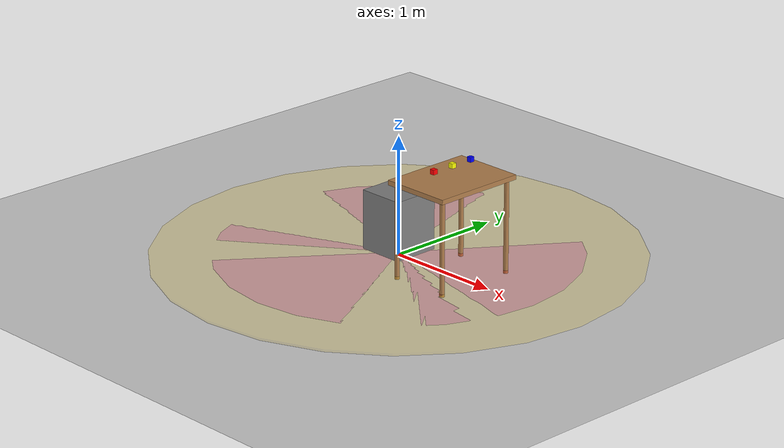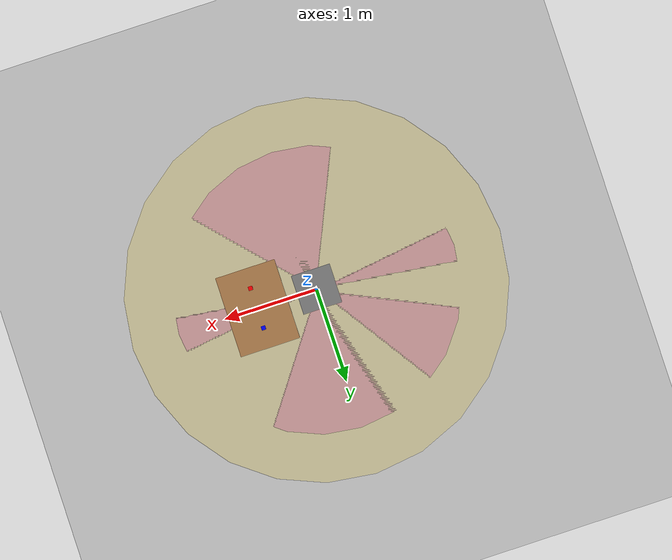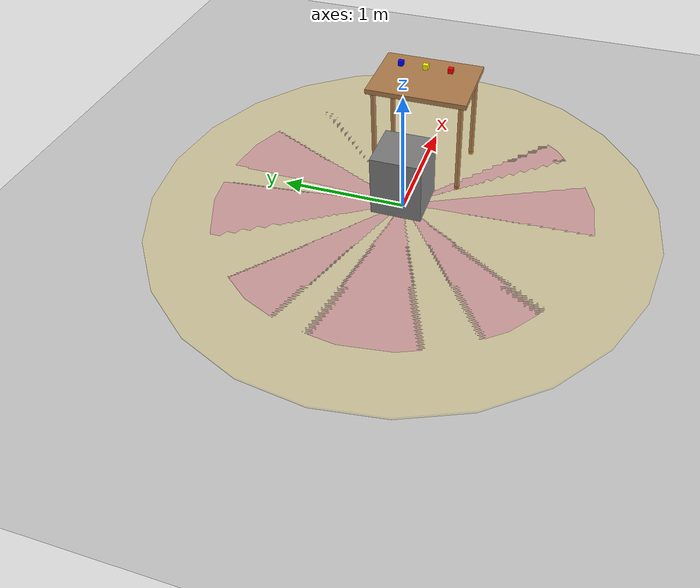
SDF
<sdf version="1.6">
 <world name="pick_place_demo">
  <physics type="ode">
   <max_step_size>0.001</max_step_size>
   <real_time_factor>1</real_time_factor>
   <real_time_update_rate>1000</real_time_update_rate>
  </physics>
  <plugin name="gazebo_ros_init" filename="libgazebo_ros_init.so">
   <ros><namespace>/gazebo</namespace></ros>
  </plugin>
  <plugin name="gazebo_ros_factory" filename="libgazebo_ros_factory.so">
   <ros><namespace>/gazebo</namespace></ros>
  </plugin>
  <plugin name="gazebo_ros_state" filename="libgazebo_ros_state.so">
   <ros><namespace>/gazebo</namespace></ros>
   <update_rate>10</update_rate>
  </plugin>
  <include><uri>model://ground_plane</uri></include>
  <include><uri>model://sun</uri></include>
  <model name="warning_zone">
   <static>true</static>
   <pose>0 0 0.01 0 0 0</pose>
   <link name="link">
    <visual name="visual">
     <cast_shadows>false</cast_shadows>
     <geometry><cylinder><radius>2.0</radius><length>0.02</length></cylinder></geometry>
     <material>
      <ambient>1 0.8 0 0.2</ambient>
      <diffuse>1 0.8 0 0.2</diffuse>
      <specular>1 0.8 0 0.2</specular>
      <transparency>0.8</transparency>
     </material>
    </visual>
   </link>
  </model>
  <model name="stop_zone">
   <static>true</static>
   <pose>0 0 0.01 0 0 0</pose>
   <link name="link">
    <visual name="visual">
     <cast_shadows>false</cast_shadows>
     <geometry><cylinder><radius>1.5</radius><length>0.02</length></cylinder></geometry>
     <material>
      <ambient>1 0 0 0.2</ambient>
      <diffuse>1 0 0 0.2</diffuse>
      <specular>1 0 0 0.2</specular>
      <transparency>0.8</transparency>
     </material>
    </visual>
   </link>
  </model>
  <model name="robot_table">
   <static>true</static>
   <pose>0 0 0.3 0 0 0</pose>
   <link name="link">
    <collision name="collision"><geometry><box><size>0.4 0.4 0.6</size></box></geometry></collision>
    <visual name="visual">
     <geometry><box><size>0.4 0.4 0.5</size></box></geometry>
     <material><ambient>0.5 0.5 0.5 1</ambient><diffuse>0.5 0.5 0.5 1</diffuse></material>
    </visual>
   </link>
  </model>
  <model name="work_table">
   <static>true</static>
   <pose>0.6 0.0 0.8 0 0 0</pose>
   <link name="link">
    <collision name="collision"><geometry><box><size>0.6 0.8 0.04</size></box></geometry></collision>
    <visual name="visual">
     <geometry><box><size>0.6 0.8 0.04</size></box></geometry>
     <material>
      <script><uri>file://media/materials/scripts/gazebo.material</uri><name>Gazebo/Wood</name></script>
     </material>
    </visual>
   </link>
   <link name="leg1">
    <pose>0.25 0.35 -0.45 0 0 0</pose>
    <collision name="collision">
     <geometry><cylinder><radius>0.02</radius><length>0.9</length></cylinder></geometry>
    </collision>
    <visual name="visual">
     <geometry><cylinder><radius>0.02</radius><length>0.9</length></cylinder></geometry>
     <material>
      <script><uri>file://media/materials/scripts/gazebo.material</uri><name>Gazebo/Wood</name></script>
     </material>
    </visual>
   </link>
   <link name="leg2">
    <pose>0.25 -0.35 -0.45 0 0 0</pose>
    <collision name="collision">
     <geometry><cylinder><radius>0.02</radius><length>0.9</length></cylinder></geometry>
    </collision>
    <visual name="visual">
     <geometry><cylinder><radius>0.02</radius><length>0.9</length></cylinder></geometry>
     <material>
      <script><uri>file://media/materials/scripts/gazebo.material</uri><name>Gazebo/Wood</name></script>
     </material>
    </visual>
   </link>
   <link name="leg3">
    <pose>-0.25 0.35 -0.45 0 0 0</pose>
    <collision name="collision">
     <geometry><cylinder><radius>0.02</radius><length>0.9</length></cylinder></geometry>
    </collision>
    <visual name="visual">
     <geometry><cylinder><radius>0.02</radius><length>0.9</length></cylinder></geometry>
     <material>
      <script><uri>file://media/materials/scripts/gazebo.material</uri><name>Gazebo/Wood</name></script>
     </material>
    </visual>
   </link>
   <link name="leg4">
    <pose>-0.25 -0.35 -0.45 0 0 0</pose>
    <collision name="collision">
     <geometry><cylinder><radius>0.02</radius><length>0.9</length></cylinder></geometry>
    </collision>
    <visual name="visual">
     <geometry><cylinder><radius>0.02</radius><length>0.9</length></cylinder></geometry>
     <material>
      <script><uri>file://media/materials/scripts/gazebo.material</uri><name>Gazebo/Wood</name></script>
     </material>
    </visual>
   </link>
  </model>
  <model name="red_cube">
   <pose>0.6 -0.2 0.92 0 0 0</pose>
   <link name="link">
    <collision name="collision"><geometry><box><size>0.04 0.04 0.04</size></box></geometry></collision>
    <visual name="visual">
     <geometry><box><size>0.04 0.04 0.04</size></box></geometry>
     <material><ambient>1 0 0 1</ambient><diffuse>1 0 0 1</diffuse></material>
    </visual>
    <inertial>
     <mass>0.1</mass>
     <inertia>
      <ixx>0.000027</ixx>
      <ixy>0.0</ixy>
      <ixz>0.0</ixz>
      <iyy>0.000027</iyy>
      <iyz>0.0</iyz>
      <izz>0.000027</izz>
     </inertia>
    </inertial>
   </link>
  </model>
  <model name="blue_cube">
   <pose>0.6 0.2 0.92 0 0 0</pose>
   <link name="link">
    <collision name="collision"><geometry><box><size>0.04 0.04 0.04</size></box></geometry></collision>
    <visual name="visual">
     <geometry><box><size>0.04 0.04 0.04</size></box></geometry>
     <material><ambient>0 0 1 1</ambient><diffuse>0 0 1 1</diffuse></material>
    </visual>
    <inertial>
     <mass>0.1</mass>
     <inertia>
      <ixx>0.000027</ixx>
      <ixy>0.0</ixy>
      <ixz>0.0</ixz>
      <iyy>0.000027</iyy>
      <iyz>0.0</iyz>
      <izz>0.000027</izz>
     </inertia>
    </inertial>
   </link>
  </model>
  <model name="yellow_cube">
   <pose>0.6 0.0 0.92 0 0 0</pose>
   <link name="link">
    <collision name="collision"><geometry><box><size>0.04 0.04 0.04</size></box></geometry></collision>
    <visual name="visual">
     <geometry><box><size>0.04 0.04 0.04</size></box></geometry>
     <material><ambient>1 1 0 1</ambient><diffuse>1 1 0 1</diffuse></material>
    </visual>
    <inertial>
     <mass>0.1</mass>
     <inertia>
      <ixx>0.000027</ixx>
      <ixy>0.0</ixy>
      <ixz>0.0</ixz>
      <iyy>0.000027</iyy>
      <iyz>0.0</iyz>
      <izz>0.000027</izz>
     </inertia>
    </inertial>
   </link>
  </model>
  <plugin name="gazebo_link_attacher" filename="libgazebo_link_attacher.so"/>
 </world>
</sdf>
